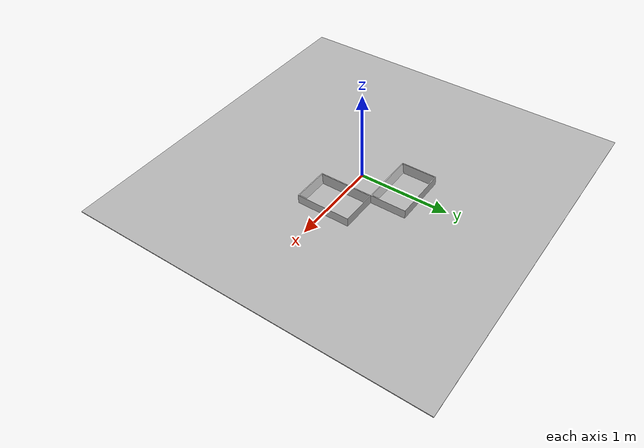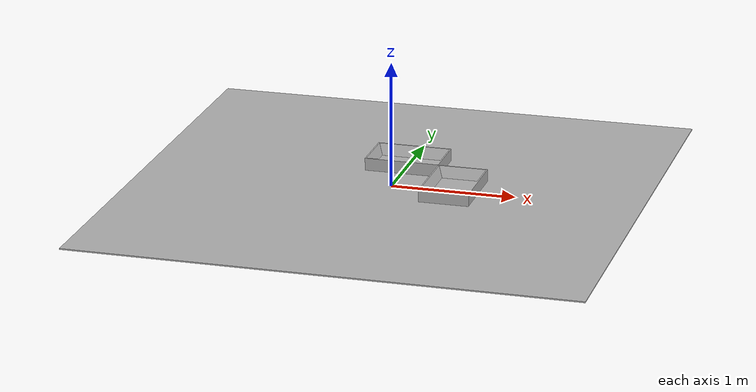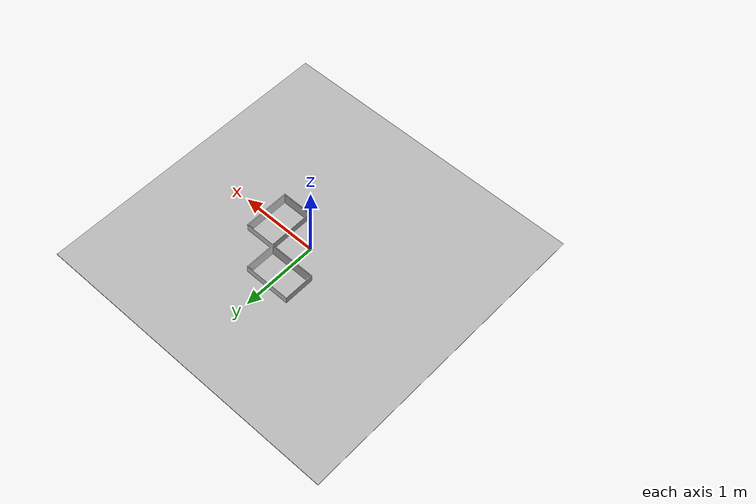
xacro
<?xml version="1.0" ?>
<robot name="rl_scene" xmlns:xacro="http://www.ros.org/wiki/xacro">

<xacro:include filename="$(find rl_scene_description)/urdf/materials.xacro" />
<xacro:include filename="$(find rl_scene_description)/urdf/rl_scene.trans" />
<xacro:include filename="$(find rl_scene_description)/urdf/rl_scene.gazebo" />
<link name="base_link">
  <inertial>
    <origin rpy="0 0 0" xyz="0.0 -2.3283064365386967e-16 -0.005"/>
    <mass value="1256.0"/>
    <inertia ixx="1674.677133" ixy="-0.0" ixz="0.0" iyy="1674.677133" iyz="-0.0" izz="3349.333333"/>
  </inertial>
  <visual>
    <origin rpy="0 0 0" xyz="0 0 0"/>
    <geometry>
      <mesh filename="package://rl_scene_description/meshes/base_link.stl" scale="0.001 0.001 0.001"/>
    </geometry>
    <material name="silver"/>
  </visual>
  <collision>
    <origin rpy="0 0 0" xyz="0 0 0"/>
    <geometry>
      <mesh filename="package://rl_scene_description/meshes/base_link.stl" scale="0.001 0.001 0.001"/>
    </geometry>
  </collision>
</link>

<link name="link_box1_1">
  <inertial>
    <origin rpy="0 0 0" xyz="8.478324452852449e-17 0.0 0.03175959070611188"/>
    <mass value="53.89391980829295"/>
    <inertia ixx="1.185042" ixy="0.0" ixz="0.0" iyy="2.312279" iyz="-0.0" izz="3.413976"/>
  </inertial>
  <visual>
    <origin rpy="0 0 0" xyz="0.0 -0.5 -0.0"/>
    <geometry>
      <mesh filename="package://rl_scene_description/meshes/link_box1_1.stl" scale="0.001 0.001 0.001"/>
    </geometry>
    <material name="silver"/>
  </visual>
  <collision>
    <origin rpy="0 0 0" xyz="0.0 -0.5 -0.0"/>
    <geometry>
      <mesh filename="package://rl_scene_description/meshes/link_box1_1.stl" scale="0.001 0.001 0.001"/>
    </geometry>
  </collision>
</link>

<link name="link_box2_1">
  <inertial>
    <origin rpy="0 0 0" xyz="1.1102230246251565e-16 0.0 0.03175959070611188"/>
    <mass value="53.89391980829295"/>
    <inertia ixx="2.312279" ixy="0.0" ixz="0.0" iyy="1.185042" iyz="-0.0" izz="3.413976"/>
  </inertial>
  <visual>
    <origin rpy="0 0 0" xyz="-0.5 -0.0 -0.0"/>
    <geometry>
      <mesh filename="package://rl_scene_description/meshes/link_box2_1.stl" scale="0.001 0.001 0.001"/>
    </geometry>
    <material name="silver"/>
  </visual>
  <collision>
    <origin rpy="0 0 0" xyz="-0.5 -0.0 -0.0"/>
    <geometry>
      <mesh filename="package://rl_scene_description/meshes/link_box2_1.stl" scale="0.001 0.001 0.001"/>
    </geometry>
  </collision>
</link>

<joint name="box2_joint" type="fixed">
  <origin rpy="0 0 0" xyz="0.0 0.5 0.0"/>
  <parent link="base_link"/>
  <child link="link_box1_1"/>
</joint>

<joint name="box1_joint" type="fixed">
  <origin rpy="0 0 0" xyz="0.5 0.0 0.0"/>
  <parent link="base_link"/>
  <child link="link_box2_1"/>
</joint>

</robot>

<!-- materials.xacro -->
<robot name="rl_scene" xmlns:xacro="http://www.ros.org/wiki/xacro" >

<material name="silver">
  <color rgba="0.700 0.700 0.700 1.000"/>
</material>

</robot>

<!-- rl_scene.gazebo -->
<robot name="rl_scene" xmlns:xacro="http://www.ros.org/wiki/xacro" >

<xacro:property name="body_color" value="Gazebo/Silver" />

<gazebo>
  <plugin filename="libgazebo_ros_control.so" name="control"/>
</gazebo>
<gazebo reference="base_link">
  <material>${body_color}</material>
  <mu1>0.2</mu1>
  <mu2>0.2</mu2>
  <selfCollide>true</selfCollide>
  <gravity>true</gravity>
</gazebo>

<gazebo reference="link_box1_1">
  <material>${body_color}</material>
  <mu1>0.2</mu1>
  <mu2>0.2</mu2>
  <selfCollide>true</selfCollide>
</gazebo>

<gazebo reference="link_box2_1">
  <material>${body_color}</material>
  <mu1>0.2</mu1>
  <mu2>0.2</mu2>
  <selfCollide>true</selfCollide>
</gazebo>

</robot>
